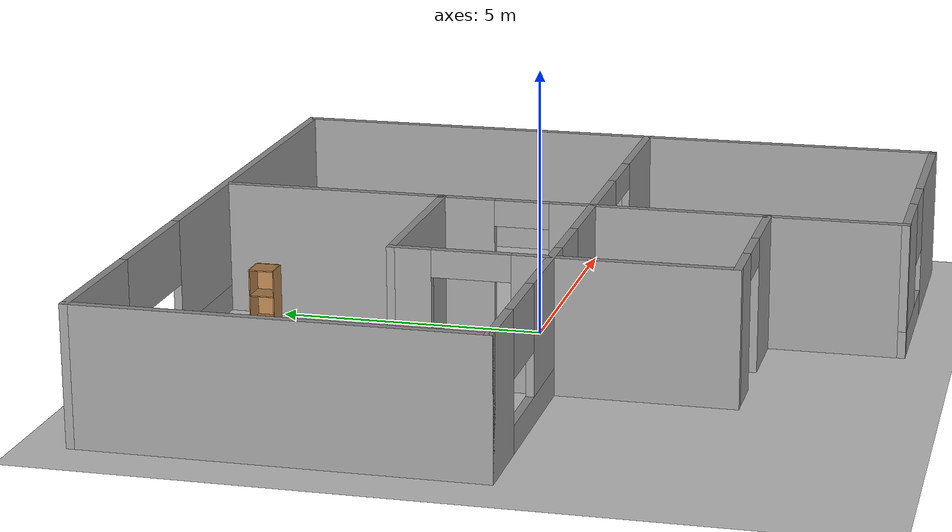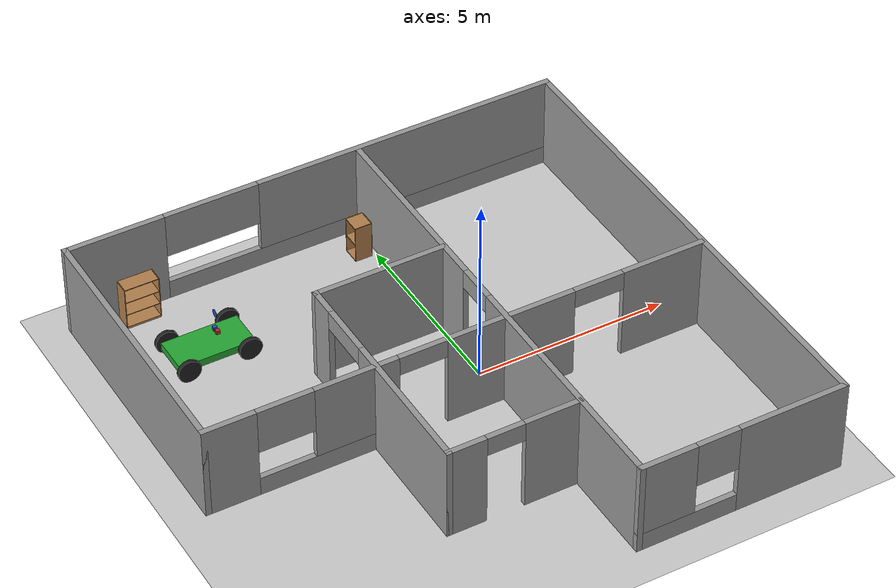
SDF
<sdf version="1.6">
 <world name="default">
  <light name="sun" type="directional">
   <pose>0 0 10 0 -0 0</pose>
   <diffuse>0.8 0.8 0.8 1</diffuse>
   <specular>0.2 0.2 0.2 1</specular>
   <attenuation>
    <range>1000</range>
    <constant>0.9</constant>
    <linear>0.01</linear>
    <quadratic>0.001</quadratic>
   </attenuation>
   <direction>-0.5 0.1 -0.9</direction>
  </light>
  <model name="ground_plane">
   <static>1</static>
   <link name="link">
    <collision name="collision">
     <geometry><plane><normal>0 0 1</normal><size>100 100</size></plane></geometry>
     <surface>
      <contact><collide_bitmask>65535</collide_bitmask></contact>
      <friction><ode><mu>100</mu><mu2>50</mu2></ode></friction>
     </surface>
    </collision>
    <visual name="visual">
     <cast_shadows>0</cast_shadows>
     <geometry><plane><normal>0 0 1</normal><size>100 100</size></plane></geometry>
     <material>
      <script><uri>file://media/materials/scripts/gazebo.material</uri><name>Gazebo/Grey</name></script>
     </material>
    </visual>
   </link>
  </model>
  <gravity>0 0 -9.8</gravity>
  <magnetic_field>6e-06 2.3e-05 -4.2e-05</magnetic_field>
  <atmosphere type="adiabatic"/>
  <physics name="default_physics" default="0" type="ode">
   <max_step_size>0.001</max_step_size>
   <real_time_factor>1</real_time_factor>
   <real_time_update_rate>1000</real_time_update_rate>
  </physics>
  <scene><ambient>0.4 0.4 0.4 1</ambient><background>0.7 0.7 0.7 1</background><shadows>1</shadows></scene>
  <spherical_coordinates>
   <surface_model>EARTH_WGS84</surface_model>
   <latitude_deg>0</latitude_deg>
   <longitude_deg>0</longitude_deg>
   <elevation>0</elevation>
   <heading_deg>0</heading_deg>
  </spherical_coordinates>
  <model name="Sample_Map">
   <pose>-1.0746 -0.283669 0 0 -0 0</pose>
   <link name="Wall_20">
    <pose>0 6.425 0 0 -0 0</pose>
    <visual name="Wall_20_Visual_0">
     <pose>-5.3151 0 1.25 0 -0 0</pose>
     <geometry><box><size>2.61979 0.15 2.5</size></box></geometry>
     <material>
      <script><uri>file://media/materials/scripts/gazebo.material</uri><name>Gazebo/Grey</name></script>
      <ambient>1 1 1 1</ambient>
     </material>
     <meta><layer>0</layer></meta>
    </visual>
    <collision name="Wall_20_Collision_0">
     <geometry><box><size>2.61979 0.15 2.5</size></box></geometry>
     <pose>-5.3151 0 1.25 0 -0 0</pose>
    </collision>
    <visual name="Wall_20_Visual_1">
     <pose>1.3099 0 0.25 0 -0 0</pose>
     <geometry><box><size>10.6302 0.15 0.5</size></box></geometry>
     <material>
      <script><uri>file://media/materials/scripts/gazebo.material</uri><name>Gazebo/Grey</name></script>
      <ambient>1 1 1 1</ambient>
     </material>
     <meta><layer>0</layer></meta>
    </visual>
    <collision name="Wall_20_Collision_1">
     <geometry><box><size>10.6302 0.15 0.5</size></box></geometry>
     <pose>1.3099 0 0.25 0 -0 0</pose>
    </collision>
    <visual name="Wall_20_Visual_2">
     <pose>2.55418 0 1.5 0 -0 0</pose>
     <geometry><box><size>8.14163 0.15 2</size></box></geometry>
     <material>
      <script><uri>file://media/materials/scripts/gazebo.material</uri><name>Gazebo/Grey</name></script>
      <ambient>1 1 1 1</ambient>
     </material>
     <meta><layer>0</layer></meta>
    </visual>
    <collision name="Wall_20_Collision_2">
     <geometry><box><size>8.14163 0.15 2</size></box></geometry>
     <pose>2.55418 0 1.5 0 -0 0</pose>
    </collision>
    <visual name="Wall_20_Visual_3">
     <pose>-2.76092 0 1.9 0 -0 0</pose>
     <geometry><box><size>2.48858 0.15 1.2</size></box></geometry>
     <material>
      <script><uri>file://media/materials/scripts/gazebo.material</uri><name>Gazebo/Grey</name></script>
      <ambient>1 1 1 1</ambient>
     </material>
     <meta><layer>0</layer></meta>
    </visual>
    <collision name="Wall_20_Collision_3">
     <geometry><box><size>2.48858 0.15 1.2</size></box></geometry>
     <pose>-2.76092 0 1.9 0 -0 0</pose>
    </collision>
   </link>
   <link name="Wall_21">
    <collision name="Wall_21_Collision">
     <geometry><box><size>13 0.15 2.5</size></box></geometry>
     <pose>0 0 1.25 0 -0 0</pose>
    </collision>
    <visual name="Wall_21_Visual">
     <pose>0 0 1.25 0 -0 0</pose>
     <geometry><box><size>13 0.15 2.5</size></box></geometry>
     <material>
      <script><uri>file://media/materials/scripts/gazebo.material</uri><name>Gazebo/Grey</name></script>
      <ambient>1 1 1 1</ambient>
     </material>
     <meta><layer>0</layer></meta>
    </visual>
    <pose>6.55 0 0 0 0 -1.5708</pose>
   </link>
   <link name="Wall_22">
    <pose>3.875 -6.425 0 0 -0 3.14159</pose>
    <visual name="Wall_22_Visual_0">
     <pose>-1.31434 0 1.25 0 -0 0</pose>
     <geometry><box><size>2.87133 0.15 2.5</size></box></geometry>
     <material>
      <script><uri>file://media/materials/scripts/gazebo.material</uri><name>Gazebo/Grey</name></script>
      <ambient>1 1 1 1</ambient>
     </material>
     <meta><layer>0</layer></meta>
    </visual>
    <collision name="Wall_22_Collision_0">
     <geometry><box><size>2.87133 0.15 2.5</size></box></geometry>
     <pose>-1.31434 0 1.25 0 -0 0</pose>
    </collision>
    <visual name="Wall_22_Visual_1">
     <pose>1.43566 0 0.25 0 -0 0</pose>
     <geometry><box><size>2.62867 0.15 0.5</size></box></geometry>
     <material>
      <script><uri>file://media/materials/scripts/gazebo.material</uri><name>Gazebo/Grey</name></script>
      <ambient>1 1 1 1</ambient>
     </material>
     <meta><layer>0</layer></meta>
    </visual>
    <collision name="Wall_22_Collision_1">
     <geometry><box><size>2.62867 0.15 0.5</size></box></geometry>
     <pose>1.43566 0 0.25 0 -0 0</pose>
    </collision>
    <visual name="Wall_22_Visual_2">
     <pose>1.99527 0 1.5 0 -0 0</pose>
     <geometry><box><size>1.50947 0.15 2</size></box></geometry>
     <material>
      <script><uri>file://media/materials/scripts/gazebo.material</uri><name>Gazebo/Grey</name></script>
      <ambient>1 1 1 1</ambient>
     </material>
     <meta><layer>0</layer></meta>
    </visual>
    <collision name="Wall_22_Collision_2">
     <geometry><box><size>1.50947 0.15 2</size></box></geometry>
     <pose>1.99527 0 1.5 0 -0 0</pose>
    </collision>
    <visual name="Wall_22_Visual_3">
     <pose>0.680929 0 1.9 0 -0 0</pose>
     <geometry><box><size>1.1192 0.15 1.2</size></box></geometry>
     <material>
      <script><uri>file://media/materials/scripts/gazebo.material</uri><name>Gazebo/Grey</name></script>
      <ambient>1 1 1 1</ambient>
     </material>
     <meta><layer>0</layer></meta>
    </visual>
    <collision name="Wall_22_Collision_3">
     <geometry><box><size>1.1192 0.15 1.2</size></box></geometry>
     <pose>0.680929 0 1.9 0 -0 0</pose>
    </collision>
   </link>
   <link name="Wall_29">
    <pose>1.2 0 0 0 -0 1.5708</pose>
    <visual name="Wall_29_Visual_0">
     <pose>-3.18511 0 1.25 0 -0 0</pose>
     <geometry><box><size>6.62979 0.15 2.5</size></box></geometry>
     <material>
      <script><uri>file://media/materials/scripts/gazebo.material</uri><name>Gazebo/Grey</name></script>
      <ambient>1 1 1 1</ambient>
     </material>
     <meta><layer>0</layer></meta>
    </visual>
    <collision name="Wall_29_Collision_0">
     <geometry><box><size>6.62979 0.15 2.5</size></box></geometry>
     <pose>-3.18511 0 1.25 0 -0 0</pose>
    </collision>
    <visual name="Wall_29_Visual_1">
     <pose>3.83139 0 1.25 0 -0 0</pose>
     <geometry><box><size>5.33721 0.15 2.5</size></box></geometry>
     <material>
      <script><uri>file://media/materials/scripts/gazebo.material</uri><name>Gazebo/Grey</name></script>
      <ambient>1 1 1 1</ambient>
     </material>
     <meta><layer>0</layer></meta>
    </visual>
    <collision name="Wall_29_Collision_1">
     <geometry><box><size>5.33721 0.15 2.5</size></box></geometry>
     <pose>3.83139 0 1.25 0 -0 0</pose>
    </collision>
    <visual name="Wall_29_Visual_2">
     <pose>0.646285 0 2.25 0 -0 0</pose>
     <geometry><box><size>1.033 0.15 0.5</size></box></geometry>
     <material>
      <script><uri>file://media/materials/scripts/gazebo.material</uri><name>Gazebo/Grey</name></script>
      <ambient>1 1 1 1</ambient>
     </material>
     <meta><layer>0</layer></meta>
    </visual>
    <collision name="Wall_29_Collision_2">
     <geometry><box><size>1.033 0.15 0.5</size></box></geometry>
     <pose>0.646285 0 2.25 0 -0 0</pose>
    </collision>
   </link>
   <link name="Wall_31">
    <collision name="Wall_31_Collision">
     <geometry><box><size>7.25 0.15 2.5</size></box></geometry>
     <pose>0 0 1.25 0 -0 0</pose>
    </collision>
    <visual name="Wall_31_Visual">
     <pose>0 0 1.25 0 -0 0</pose>
     <geometry><box><size>7.25 0.15 2.5</size></box></geometry>
     <material>
      <script><uri>file://media/materials/scripts/gazebo.material</uri><name>Gazebo/Grey</name></script>
      <ambient>1 1 1 1</ambient>
     </material>
     <meta><layer>0</layer></meta>
    </visual>
    <pose>-6.55 2.875 0 0 0 -1.5708</pose>
   </link>
   <link name="Wall_32">
    <pose>0 -0.675 0 0 -0 0</pose>
    <visual name="Wall_32_Visual_0">
     <pose>-5.9315 0 1.25 0 -0 0</pose>
     <geometry><box><size>1.38701 0.15 2.5</size></box></geometry>
     <material>
      <script><uri>file://media/materials/scripts/gazebo.material</uri><name>Gazebo/Grey</name></script>
      <ambient>1 1 1 1</ambient>
     </material>
     <meta><layer>0</layer></meta>
    </visual>
    <collision name="Wall_32_Collision_0">
     <geometry><box><size>1.38701 0.15 2.5</size></box></geometry>
     <pose>-5.9315 0 1.25 0 -0 0</pose>
    </collision>
    <visual name="Wall_32_Visual_1">
     <pose>1.30903 0 1.25 0 -0 0</pose>
     <geometry><box><size>3.38263 0.15 2.5</size></box></geometry>
     <material>
      <script><uri>file://media/materials/scripts/gazebo.material</uri><name>Gazebo/Grey</name></script>
      <ambient>1 1 1 1</ambient>
     </material>
     <meta><layer>0</layer></meta>
    </visual>
    <collision name="Wall_32_Collision_1">
     <geometry><box><size>3.38263 0.15 2.5</size></box></geometry>
     <pose>1.30903 0 1.25 0 -0 0</pose>
    </collision>
    <visual name="Wall_32_Visual_2">
     <pose>5.47547 0 1.25 0 -0 0</pose>
     <geometry><box><size>2.29905 0.15 2.5</size></box></geometry>
     <material>
      <script><uri>file://media/materials/scripts/gazebo.material</uri><name>Gazebo/Grey</name></script>
      <ambient>1 1 1 1</ambient>
     </material>
     <meta><layer>0</layer></meta>
    </visual>
    <collision name="Wall_32_Collision_2">
     <geometry><box><size>2.29905 0.15 2.5</size></box></geometry>
     <pose>5.47547 0 1.25 0 -0 0</pose>
    </collision>
    <visual name="Wall_32_Visual_3">
     <pose>-3.43304 0 0.25 0 -0 0</pose>
     <geometry><box><size>3.6099 0.15 0.5</size></box></geometry>
     <material>
      <script><uri>file://media/materials/scripts/gazebo.material</uri><name>Gazebo/Grey</name></script>
      <ambient>1 1 1 1</ambient>
     </material>
     <meta><layer>0</layer></meta>
    </visual>
    <collision name="Wall_32_Collision_3">
     <geometry><box><size>3.6099 0.15 0.5</size></box></geometry>
     <pose>-3.43304 0 0.25 0 -0 0</pose>
    </collision>
    <visual name="Wall_32_Visual_4">
     <pose>-2.70921 0 1.5 0 -0 0</pose>
     <geometry><box><size>2.16225 0.15 2</size></box></geometry>
     <material>
      <script><uri>file://media/materials/scripts/gazebo.material</uri><name>Gazebo/Grey</name></script>
      <ambient>1 1 1 1</ambient>
     </material>
     <meta><layer>0</layer></meta>
    </visual>
    <collision name="Wall_32_Collision_4">
     <geometry><box><size>2.16225 0.15 2</size></box></geometry>
     <pose>-2.70921 0 1.5 0 -0 0</pose>
    </collision>
    <visual name="Wall_32_Visual_5">
     <pose>-4.51417 0 1.9 0 -0 0</pose>
     <geometry><box><size>1.44766 0.15 1.2</size></box></geometry>
     <material>
      <script><uri>file://media/materials/scripts/gazebo.material</uri><name>Gazebo/Grey</name></script>
      <ambient>1 1 1 1</ambient>
     </material>
     <meta><layer>0</layer></meta>
    </visual>
    <collision name="Wall_32_Collision_5">
     <geometry><box><size>1.44766 0.15 1.2</size></box></geometry>
     <pose>-4.51417 0 1.9 0 -0 0</pose>
    </collision>
    <visual name="Wall_32_Visual_6">
     <pose>3.66315 0 2.25 0 -0 0</pose>
     <geometry><box><size>1.3256 0.15 0.5</size></box></geometry>
     <material>
      <script><uri>file://media/materials/scripts/gazebo.material</uri><name>Gazebo/Grey</name></script>
      <ambient>1 1 1 1</ambient>
     </material>
     <meta><layer>0</layer></meta>
    </visual>
    <collision name="Wall_32_Collision_6">
     <geometry><box><size>1.3256 0.15 0.5</size></box></geometry>
     <pose>3.66315 0 2.25 0 -0 0</pose>
    </collision>
    <visual name="Wall_32_Visual_7">
     <pose>-1.00519 0 2.25 0 -0 0</pose>
     <geometry><box><size>1.2458 0.15 0.5</size></box></geometry>
     <material>
      <script><uri>file://media/materials/scripts/gazebo.material</uri><name>Gazebo/Grey</name></script>
      <ambient>1 1 1 1</ambient>
     </material>
     <meta><layer>0</layer></meta>
    </visual>
    <collision name="Wall_32_Collision_7">
     <geometry><box><size>1.2458 0.15 0.5</size></box></geometry>
     <pose>-1.00519 0 2.25 0 -0 0</pose>
    </collision>
   </link>
   <link name="Wall_34">
    <collision name="Wall_34_Collision">
     <geometry><box><size>3.5 0.15 2.5</size></box></geometry>
     <pose>0 0 1.25 0 -0 0</pose>
    </collision>
    <visual name="Wall_34_Visual">
     <pose>0 0 1.25 0 -0 0</pose>
     <geometry><box><size>3.5 0.15 2.5</size></box></geometry>
     <material>
      <script><uri>file://media/materials/scripts/gazebo.material</uri><name>Gazebo/Grey</name></script>
      <ambient>1 1 1 1</ambient>
     </material>
     <meta><layer>0</layer></meta>
    </visual>
    <pose>-0.521431 2.17959 0 0 -0 3.14159</pose>
   </link>
   <link name="Wall_35">
    <pose>-2.19643 -0.870412 0 0 0 -1.5708</pose>
    <visual name="Wall_35_Visual_0">
     <pose>-2.72149 0 1.25 0 -0 0</pose>
     <geometry><box><size>0.807015 0.15 2.5</size></box></geometry>
     <material>
      <script><uri>file://media/materials/scripts/gazebo.material</uri><name>Gazebo/Grey</name></script>
      <ambient>1 1 1 1</ambient>
     </material>
     <meta><layer>0</layer></meta>
    </visual>
    <collision name="Wall_35_Collision_0">
     <geometry><box><size>0.807015 0.15 2.5</size></box></geometry>
     <pose>-2.72149 0 1.25 0 -0 0</pose>
    </collision>
    <visual name="Wall_35_Visual_1">
     <pose>1.11951 0 1.25 0 -0 0</pose>
     <geometry><box><size>4.01098 0.15 2.5</size></box></geometry>
     <material>
      <script><uri>file://media/materials/scripts/gazebo.material</uri><name>Gazebo/Grey</name></script>
      <ambient>1 1 1 1</ambient>
     </material>
     <meta><layer>0</layer></meta>
    </visual>
    <collision name="Wall_35_Collision_1">
     <geometry><box><size>4.01098 0.15 2.5</size></box></geometry>
     <pose>1.11951 0 1.25 0 -0 0</pose>
    </collision>
    <visual name="Wall_35_Visual_2">
     <pose>-1.60198 0 2.25 0 -0 0</pose>
     <geometry><box><size>1.432 0.15 0.5</size></box></geometry>
     <material>
      <script><uri>file://media/materials/scripts/gazebo.material</uri><name>Gazebo/Grey</name></script>
      <ambient>1 1 1 1</ambient>
     </material>
     <meta><layer>0</layer></meta>
    </visual>
    <collision name="Wall_35_Collision_2">
     <geometry><box><size>1.432 0.15 0.5</size></box></geometry>
     <pose>-1.60198 0 2.25 0 -0 0</pose>
    </collision>
   </link>
   <link name="Wall_36">
    <pose>-0.521431 -3.92041 0 0 -0 0</pose>
    <visual name="Wall_36_Visual_0">
     <pose>-1.23548 0 1.25 0 -0 0</pose>
     <geometry><box><size>1.02904 0.15 2.5</size></box></geometry>
     <material>
      <script><uri>file://media/materials/scripts/gazebo.material</uri><name>Gazebo/Grey</name></script>
      <ambient>1 1 1 1</ambient>
     </material>
     <meta><layer>0</layer></meta>
    </visual>
    <collision name="Wall_36_Collision_0">
     <geometry><box><size>1.02904 0.15 2.5</size></box></geometry>
     <pose>-1.23548 0 1.25 0 -0 0</pose>
    </collision>
    <visual name="Wall_36_Visual_1">
     <pose>1.00442 0 1.25 0 -0 0</pose>
     <geometry><box><size>1.49116 0.15 2.5</size></box></geometry>
     <material>
      <script><uri>file://media/materials/scripts/gazebo.material</uri><name>Gazebo/Grey</name></script>
      <ambient>1 1 1 1</ambient>
     </material>
     <meta><layer>0</layer></meta>
    </visual>
    <collision name="Wall_36_Collision_1">
     <geometry><box><size>1.49116 0.15 2.5</size></box></geometry>
     <pose>1.00442 0 1.25 0 -0 0</pose>
    </collision>
    <visual name="Wall_36_Visual_2">
     <pose>-0.231056 0 2.25 0 -0 0</pose>
     <geometry><box><size>0.979801 0.15 0.5</size></box></geometry>
     <material>
      <script><uri>file://media/materials/scripts/gazebo.material</uri><name>Gazebo/Grey</name></script>
      <ambient>1 1 1 1</ambient>
     </material>
     <meta><layer>0</layer></meta>
    </visual>
    <collision name="Wall_36_Collision_2">
     <geometry><box><size>0.979801 0.15 0.5</size></box></geometry>
     <pose>-0.231056 0 2.25 0 -0 0</pose>
    </collision>
   </link>
   <static>1</static>
  </model>
  <model name="bookshelf">
   <static>1</static>
   <link name="link">
    <inertial><mass>1</mass></inertial>
    <collision name="back">
     <pose>0 0.005 0.6 0 -0 0</pose>
     <geometry><box><size>0.9 0.01 1.2</size></box></geometry>
    </collision>
    <visual name="visual1">
     <pose>0 0.005 0.6 0 -0 0</pose>
     <geometry><box><size>0.9 0.01 1.2</size></box></geometry>
     <material>
      <script><uri>file://media/materials/scripts/gazebo.material</uri><name>Gazebo/Wood</name></script>
     </material>
    </visual>
    <collision name="left_side">
     <pose>0.45 -0.195 0.6 0 -0 0</pose>
     <geometry><box><size>0.02 0.4 1.2</size></box></geometry>
    </collision>
    <visual name="visual2">
     <pose>0.45 -0.195 0.6 0 -0 0</pose>
     <geometry><box><size>0.02 0.4 1.2</size></box></geometry>
     <material>
      <script><uri>file://media/materials/scripts/gazebo.material</uri><name>Gazebo/Wood</name></script>
     </material>
    </visual>
    <collision name="right_side">
     <pose>-0.45 -0.195 0.6 0 -0 0</pose>
     <geometry><box><size>0.02 0.4 1.2</size></box></geometry>
    </collision>
    <visual name="visual3">
     <pose>-0.45 -0.195 0.6 0 -0 0</pose>
     <geometry><box><size>0.02 0.4 1.2</size></box></geometry>
     <material>
      <script><uri>file://media/materials/scripts/gazebo.material</uri><name>Gazebo/Wood</name></script>
     </material>
    </visual>
    <collision name="bottom">
     <pose>0 -0.195 0.03 0 -0 0</pose>
     <geometry><box><size>0.88 0.4 0.06</size></box></geometry>
    </collision>
    <visual name="visual4">
     <pose>0 -0.195 0.03 0 -0 0</pose>
     <geometry><box><size>0.88 0.4 0.06</size></box></geometry>
     <material>
      <script><uri>file://media/materials/scripts/gazebo.material</uri><name>Gazebo/Wood</name></script>
     </material>
    </visual>
    <collision name="top">
     <pose>0 -0.195 1.19 0 -0 0</pose>
     <geometry><box><size>0.88 0.4 0.02</size></box></geometry>
    </collision>
    <visual name="visual5">
     <pose>0 -0.195 1.19 0 -0 0</pose>
     <geometry><box><size>0.88 0.4 0.02</size></box></geometry>
     <material>
      <script><uri>file://media/materials/scripts/gazebo.material</uri><name>Gazebo/Wood</name></script>
     </material>
    </visual>
    <collision name="low_shelf">
     <pose>0 -0.195 0.43 0 -0 0</pose>
     <geometry><box><size>0.88 0.4 0.02</size></box></geometry>
    </collision>
    <visual name="visual6">
     <pose>0 -0.195 0.43 0 -0 0</pose>
     <geometry><box><size>0.88 0.4 0.02</size></box></geometry>
     <material>
      <script><uri>file://media/materials/scripts/gazebo.material</uri><name>Gazebo/Wood</name></script>
     </material>
    </visual>
    <collision name="high_shelf">
     <pose>0 -0.195 0.8 0 -0 0</pose>
     <geometry><box><size>0.88 0.4 0.02</size></box></geometry>
    </collision>
    <visual name="visual7">
     <pose>0 -0.195 0.8 0 -0 0</pose>
     <geometry><box><size>0.88 0.4 0.02</size></box></geometry>
     <material>
      <script><uri>file://media/materials/scripts/gazebo.material</uri><name>Gazebo/Wood</name></script>
     </material>
    </visual>
   </link>
   <pose>-6.02329 5.94311 0 0 -0 0</pose>
  </model>
  <model name="cabinet">
   <static>1</static>
   <link name="cabinet_bottom_plate">
    <inertial>
     <pose>0 0 -1 0 -0 0</pose>
     <inertia><ixx>2.05</ixx><ixy>0</ixy><ixz>0</ixz><iyy>2.05</iyy><iyz>0</iyz><izz>2.05</izz></inertia>
     <mass>25</mass>
    </inertial>
    <collision name="cabinet_bottom_plate_geom">
     <pose>0 0 0.01 0 -0 0</pose>
     <geometry><box><size>0.45 0.45 0.02</size></box></geometry>
    </collision>
    <visual name="cabinet_bottom_plate_geom_visual">
     <pose>0 0 0.01 0 -0 0</pose>
     <geometry><box><size>0.45 0.45 0.02</size></box></geometry>
     <material>
      <script><uri>file://media/materials/scripts/gazebo.material</uri><name>Gazebo/Wood</name></script>
     </material>
    </visual>
    <collision name="cabinet_bottom_plate_geom_cabinet_back_plate">
     <pose>0.235 0 0.51 0 -0 0</pose>
     <geometry><box><size>0.02 0.45 1.02</size></box></geometry>
    </collision>
    <visual name="cabinet_bottom_plate_geom_cabinet_back_plate_visual">
     <pose>0.235 0 0.51 0 -0 0</pose>
     <geometry><box><size>0.02 0.45 1.02</size></box></geometry>
     <material>
      <script><uri>file://media/materials/scripts/gazebo.material</uri><name>Gazebo/Wood</name></script>
     </material>
    </visual>
    <collision name="cabinet_bottom_plate_geom_cabinet_left_plate">
     <pose>0 0.235 0.51 0 -0 0</pose>
     <geometry><box><size>0.45 0.02 1.02</size></box></geometry>
    </collision>
    <visual name="cabinet_bottom_plate_geom_cabinet_left_plate_visual">
     <pose>0 0.235 0.51 0 -0 0</pose>
     <geometry><box><size>0.45 0.02 1.02</size></box></geometry>
     <material>
      <script><uri>file://media/materials/scripts/gazebo.material</uri><name>Gazebo/Wood</name></script>
     </material>
    </visual>
    <collision name="cabinet_bottom_plate_geom_cabinet_middle_plate">
     <pose>0 0 0.51 0 -0 0</pose>
     <geometry><box><size>0.45 0.45 0.02</size></box></geometry>
    </collision>
    <visual name="cabinet_bottom_plate_geom_cabinet_middle_plate_visual">
     <pose>0 0 0.51 0 -0 0</pose>
     <geometry><box><size>0.45 0.45 0.02</size></box></geometry>
     <material>
      <script><uri>file://media/materials/scripts/gazebo.material</uri><name>Gazebo/Wood</name></script>
     </material>
    </visual>
    <collision name="cabinet_bottom_plate_geom_cabinet_right_plate">
     <pose>0 -0.235 0.51 0 -0 0</pose>
     <geometry><box><size>0.45 0.02 1.02</size></box></geometry>
    </collision>
    <visual name="cabinet_bottom_plate_geom_cabinet_right_plate_visual">
     <pose>0 -0.235 0.51 0 -0 0</pose>
     <geometry><box><size>0.45 0.02 1.02</size></box></geometry>
     <material>
      <script><uri>file://media/materials/scripts/gazebo.material</uri><name>Gazebo/Wood</name></script>
     </material>
    </visual>
    <collision name="cabinet_bottom_plate_geom_cabinet_top_plate">
     <pose>0 0 1.01 0 -0 0</pose>
     <geometry><box><size>0.45 0.45 0.02</size></box></geometry>
    </collision>
    <visual name="cabinet_bottom_plate_geom_cabinet_top_plate_visual">
     <pose>0 0 1.01 0 -0 0</pose>
     <geometry><box><size>0.45 0.45 0.02</size></box></geometry>
     <material>
      <script><uri>file://media/materials/scripts/gazebo.material</uri><name>Gazebo/Wood</name></script>
     </material>
    </visual>
   </link>
   <pose>-0.343289 5.25981 0 0 -0 0</pose>
  </model>
  <model name="car">
   <link name="chassis">
    <pose>0 0 0.3 0 -0 0</pose>
    <collision name="collision"><geometry><box><size>2 1 0.2</size></box></geometry></collision>
    <visual name="visual">
     <geometry><box><size>2 1 0.2</size></box></geometry>
     <material>
      <script><uri>file://media/materials/scripts/gazebo.material</uri><name>Gazebo/Green</name></script>
     </material>
    </visual>
    <inertial>
     <inertia><ixx>1</ixx><ixy>0</ixy><ixz>0</ixz><iyy>1</iyy><iyz>0</iyz><izz>1</izz></inertia>
     <mass>1</mass>
    </inertial>
   </link>
   <link name="front_left_wheel">
    <pose>0.8 0.6 0.3 -0 1.5707 1.5707</pose>
    <collision name="collision">
     <geometry><cylinder><radius>0.3</radius><length>0.1</length></cylinder></geometry>
    </collision>
    <visual name="visual">
     <geometry><cylinder><radius>0.3</radius><length>0.1</length></cylinder></geometry>
     <material>
      <script><uri>file://media/materials/scripts/gazebo.material</uri><name>Gazebo/Black</name></script>
     </material>
    </visual>
    <inertial>
     <inertia><ixx>1</ixx><ixy>0</ixy><ixz>0</ixz><iyy>1</iyy><iyz>0</iyz><izz>1</izz></inertia>
     <mass>1</mass>
    </inertial>
   </link>
   <link name="front_right_wheel">
    <pose>0.8 -0.6 0.3 -0 1.5707 1.5707</pose>
    <collision name="collision">
     <geometry><cylinder><radius>0.3</radius><length>0.1</length></cylinder></geometry>
    </collision>
    <visual name="visual">
     <geometry><cylinder><radius>0.3</radius><length>0.1</length></cylinder></geometry>
     <material>
      <script><uri>file://media/materials/scripts/gazebo.material</uri><name>Gazebo/Black</name></script>
     </material>
    </visual>
    <inertial>
     <inertia><ixx>1</ixx><ixy>0</ixy><ixz>0</ixz><iyy>1</iyy><iyz>0</iyz><izz>1</izz></inertia>
     <mass>1</mass>
    </inertial>
   </link>
   <link name="back_right_wheel">
    <pose>-0.8 -0.6 0.3 -0 1.5707 1.5707</pose>
    <collision name="collision">
     <geometry><cylinder><radius>0.3</radius><length>0.1</length></cylinder></geometry>
    </collision>
    <visual name="visual">
     <geometry><cylinder><radius>0.3</radius><length>0.1</length></cylinder></geometry>
     <material>
      <script><uri>file://media/materials/scripts/gazebo.material</uri><name>Gazebo/Black</name></script>
     </material>
    </visual>
    <inertial>
     <inertia><ixx>1</ixx><ixy>0</ixy><ixz>0</ixz><iyy>1</iyy><iyz>0</iyz><izz>1</izz></inertia>
     <mass>1</mass>
    </inertial>
   </link>
   <link name="back_left_wheel">
    <pose>-0.8 0.6 0.3 -0 1.5707 1.5707</pose>
    <collision name="collision">
     <geometry><cylinder><radius>0.3</radius><length>0.1</length></cylinder></geometry>
    </collision>
    <visual name="visual">
     <geometry><cylinder><radius>0.3</radius><length>0.1</length></cylinder></geometry>
     <material>
      <script><uri>file://media/materials/scripts/gazebo.material</uri><name>Gazebo/Black</name></script>
     </material>
    </visual>
    <inertial>
     <inertia><ixx>1</ixx><ixy>0</ixy><ixz>0</ixz><iyy>1</iyy><iyz>0</iyz><izz>1</izz></inertia>
     <mass>1</mass>
    </inertial>
   </link>
   <link name="gas_pedal">
    <pose>0.3 0.1 0.5 0 -0 0</pose>
    <collision name="collision"><geometry><box><size>0.1 0.1 0.1</size></box></geometry></collision>
    <visual name="visual">
     <geometry><box><size>0.1 0.1 0.1</size></box></geometry>
     <material>
      <script><uri>file://media/materials/scripts/gazebo.material</uri><name>Gazebo/Red</name></script>
     </material>
    </visual>
    <inertial>
     <inertia><ixx>1</ixx><ixy>0</ixy><ixz>0</ixz><iyy>1</iyy><iyz>0</iyz><izz>1</izz></inertia>
     <mass>1</mass>
    </inertial>
   </link>
   <link name="brake_pedal">
    <pose>0.3 0.25 0.5 0 -0 0</pose>
    <collision name="collision"><geometry><box><size>0.1 0.1 0.1</size></box></geometry></collision>
    <visual name="visual">
     <geometry><box><size>0.1 0.1 0.1</size></box></geometry>
     <material>
      <script><uri>file://media/materials/scripts/gazebo.material</uri><name>Gazebo/Blue</name></script>
     </material>
    </visual>
    <inertial>
     <inertia><ixx>1</ixx><ixy>0</ixy><ixz>0</ixz><iyy>1</iyy><iyz>0</iyz><izz>1</izz></inertia>
     <mass>1</mass>
    </inertial>
   </link>
   <link name="steering_wheel">
    <pose>0.3 0.2 1 0 1.5707 0</pose>
    <collision name="collision">
     <geometry><cylinder><radius>0.1</radius><length>0.01</length></cylinder></geometry>
    </collision>
    <visual name="visual">
     <geometry><cylinder><radius>0.1</radius><length>0.01</length></cylinder></geometry>
     <material>
      <script><uri>file://media/materials/scripts/gazebo.material</uri><name>Gazebo/Blue</name></script>
     </material>
    </visual>
    <inertial>
     <inertia><ixx>1</ixx><ixy>0</ixy><ixz>0</ixz><iyy>1</iyy><iyz>0</iyz><izz>1</izz></inertia>
     <mass>1</mass>
    </inertial>
   </link>
   <joint name="gas_joint" type="prismatic">
    <parent>chassis</parent>
    <child>gas_pedal</child>
    <axis>
     <xyz>1 0 0</xyz>
     <limit><lower>0</lower><upper>0.2</upper></limit>
     <use_parent_model_frame>1</use_parent_model_frame>
     <dynamics><spring_reference>0</spring_reference><spring_stiffness>0</spring_stiffness></dynamics>
    </axis>
   </joint>
   <joint name="brake_joint" type="prismatic">
    <parent>chassis</parent>
    <child>brake_pedal</child>
    <axis>
     <xyz>1 0 0</xyz>
     <limit><lower>0</lower><upper>0.2</upper></limit>
     <use_parent_model_frame>1</use_parent_model_frame>
     <dynamics><spring_reference>0</spring_reference><spring_stiffness>0</spring_stiffness></dynamics>
    </axis>
   </joint>
   <joint name="steering_joint" type="revolute">
    <parent>chassis</parent>
    <child>steering_wheel</child>
    <axis>
     <xyz>1 0 0</xyz>
     <limit><lower>-7.853</lower><upper>7.853</upper></limit>
     <use_parent_model_frame>1</use_parent_model_frame>
     <dynamics><spring_reference>0</spring_reference><spring_stiffness>0</spring_stiffness></dynamics>
    </axis>
   </joint>
   <joint name="front_left_joint" type="revolute2">
    <parent>chassis</parent>
    <child>front_left_wheel</child>
    <axis>
     <xyz>0 0 1</xyz>
     <limit><lower>8.69834e-06</lower><upper>8.69834e-06</upper></limit>
     <use_parent_model_frame>1</use_parent_model_frame>
     <dynamics><spring_reference>0</spring_reference><spring_stiffness>0</spring_stiffness></dynamics>
    </axis>
    <axis2>
     <xyz>0 1 0</xyz>
     <use_parent_model_frame>1</use_parent_model_frame>
     <dynamics><spring_reference>0</spring_reference><spring_stiffness>0</spring_stiffness></dynamics>
    </axis2>
    <physics><ode><limit><cfm>0</cfm><erp>0.9</erp></limit></ode></physics>
   </joint>
   <joint name="front_right_joint" type="revolute2">
    <parent>chassis</parent>
    <child>front_right_wheel</child>
    <axis>
     <xyz>0 0 1</xyz>
     <limit><lower>8.69834e-06</lower><upper>8.69834e-06</upper></limit>
     <use_parent_model_frame>1</use_parent_model_frame>
     <dynamics><spring_reference>0</spring_reference><spring_stiffness>0</spring_stiffness></dynamics>
    </axis>
    <axis2>
     <xyz>0 1 0</xyz>
     <use_parent_model_frame>1</use_parent_model_frame>
     <dynamics><spring_reference>0</spring_reference><spring_stiffness>0</spring_stiffness></dynamics>
    </axis2>
    <physics><ode><limit><cfm>0</cfm><erp>0.9</erp></limit></ode></physics>
   </joint>
   <joint name="back_right_joint" type="revolute2">
    <parent>chassis</parent>
    <child>back_right_wheel</child>
    <axis>
     <xyz>0 0 1</xyz>
     <limit><lower>0</lower><upper>0</upper></limit>
     <use_parent_model_frame>1</use_parent_model_frame>
     <dynamics><spring_reference>0</spring_reference><spring_stiffness>0</spring_stiffness></dynamics>
    </axis>
    <axis2>
     <xyz>0 1 0</xyz>
     <use_parent_model_frame>1</use_parent_model_frame>
     <dynamics><spring_reference>0</spring_reference><spring_stiffness>0</spring_stiffness></dynamics>
    </axis2>
    <physics><ode><limit><cfm>0</cfm><erp>0.9</erp></limit></ode></physics>
   </joint>
   <joint name="back_left_joint" type="revolute2">
    <parent>chassis</parent>
    <child>back_left_wheel</child>
    <axis>
     <xyz>0 0 1</xyz>
     <limit><lower>0</lower><upper>0</upper></limit>
     <use_parent_model_frame>1</use_parent_model_frame>
     <dynamics><spring_reference>0</spring_reference><spring_stiffness>0</spring_stiffness></dynamics>
    </axis>
    <axis2>
     <xyz>0 1 0</xyz>
     <use_parent_model_frame>1</use_parent_model_frame>
     <dynamics><spring_reference>0</spring_reference><spring_stiffness>0</spring_stiffness></dynamics>
    </axis2>
    <physics><ode><limit><cfm>0</cfm><erp>0.9</erp></limit></ode></physics>
   </joint>
   <plugin name="vehicle" filename="libVehiclePlugin.so">
    <front_left>front_left_joint</front_left>
    <front_right>front_right_joint</front_right>
    <back_left>back_left_joint</back_left>
    <back_right>back_right_joint</back_right>
    <gas>gas_joint</gas>
    <brake>brake_joint</brake>
    <steering>steering_joint</steering>
    <front_power>10</front_power>
    <rear_power>10</rear_power>
    <tire_angle_range>0.5</tire_angle_range>
    <max_speed>10</max_speed>
    <aero_load>0.1</aero_load>
   </plugin>
   <pose>-5.19031 3.78915 -0.002614 -0.000273 0.000907 3.2e-05</pose>
  </model>
 </world>
</sdf>
